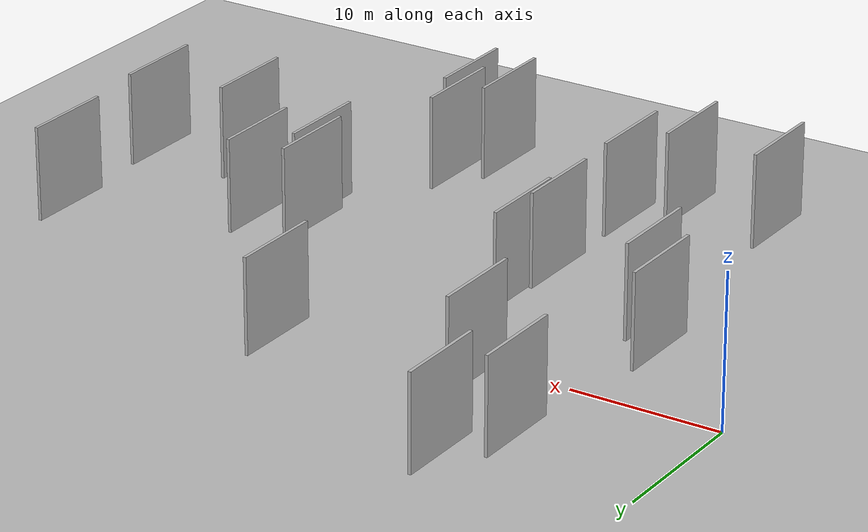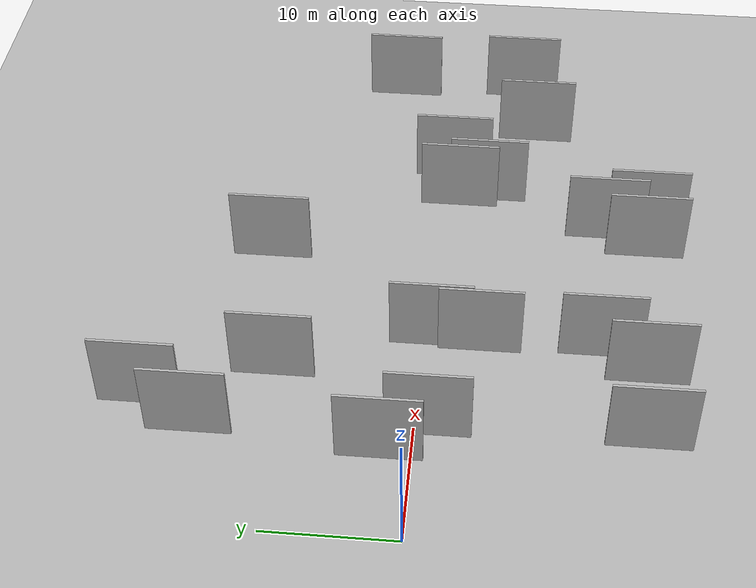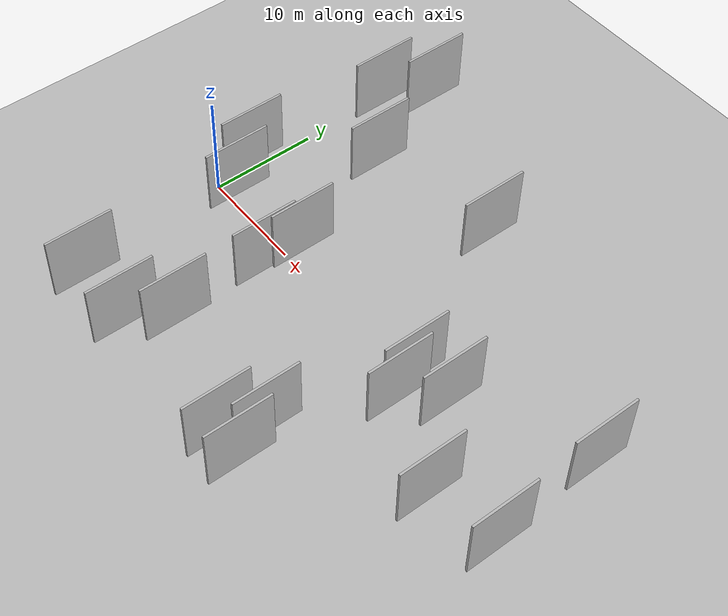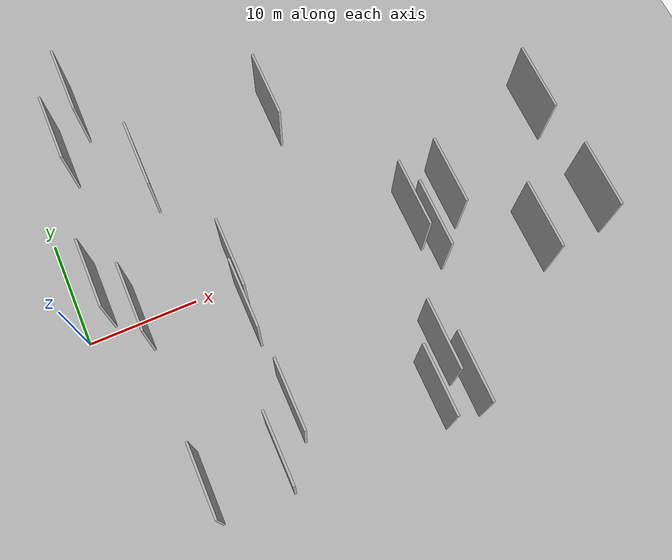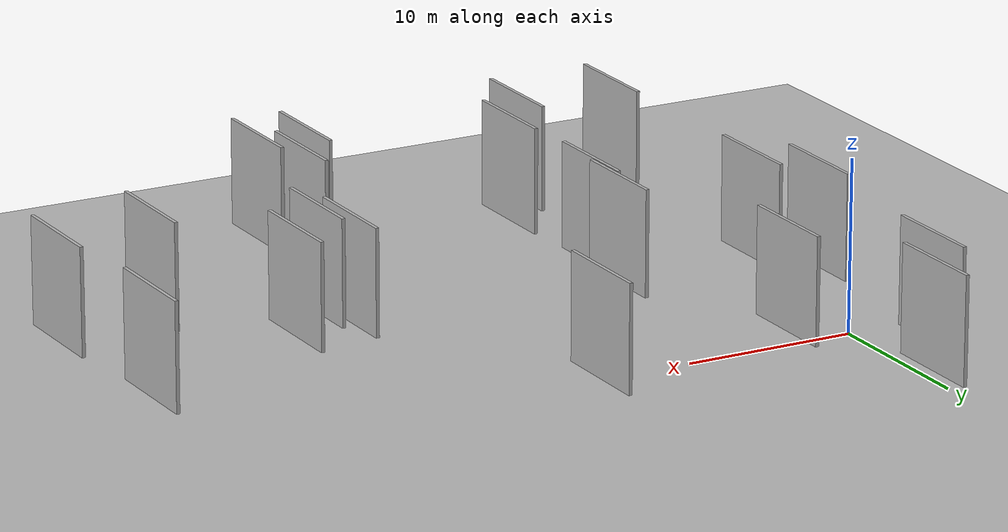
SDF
<?xml version="1.0" encoding="utf-8"?>

<sdf version="1.6">

   <world name="default">

      <gui fullscreen="0">

         <camera name="user_camera">

            <pose>-15 0 4.57585 0 0 0</pose>

            <view_controller>orbit</view_controller>

         </camera>

      </gui>

      <scene>

         <sky>

           <clouds>

             <speed>12</speed>

           </clouds>

         </sky>

         <ambient>0.4 0.4 0.4 1</ambient>

         <background>0.7 0.7 0.7 1</background>

         <shadows>1</shadows>

      </scene>

      <gravity>0 0 -9.8066</gravity>

      <magnetic_field>6e-06 2.3e-05 -4.2e-05</magnetic_field>

      <physics default="0" name="default_physics" type="ode">

         <ode>

            <solver>

               <type>quick</type>

               <iters>10</iters>

               <sor>1.0</sor>

               <use_dynamic_moi_rescaling>0</use_dynamic_moi_rescaling>

            </solver>

            <constraints>

               <cfm>0</cfm>

               <erp>0.2</erp>

               <contact_max_correcting_vel>100</contact_max_correcting_vel>

               <contact_surface_layer>0.001</contact_surface_layer>

            </constraints>

         </ode>

         <max_step_size>0.004</max_step_size>

         <real_time_factor>1</real_time_factor>

         <real_time_update_rate>250</real_time_update_rate>

      </physics>

      <light name="sun" type="directional">

         <cast_shadows>1</cast_shadows>

         <pose>0 0 10 0 0 0</pose>

         <diffuse>0.8 0.8 0.8 1</diffuse>

         <specular>0.2 0.2 0.2 1</specular>

         <attenuation>

            <range>1000</range>

            <constant>0.9</constant>

            <linear>0.01</linear>

            <quadratic>0.001</quadratic>

         </attenuation>

         <direction>-0.5 0.1 -0.9</direction>

      </light>

      <include>

         <name>ground_plane_1</name>

         <uri>model://HANNAS_ground_plane</uri>

         <pose>0 0 0  0 0 0</pose>

      </include>

      <include>

         <name>ground_plane_2</name>

         <uri>model://HANNAS_ground_plane</uri>

         <pose>100 0 0  0 0 0</pose>

      </include>

      <model name="HANNAS_wall_1">

         <static>1</static>

         <pose frame="">43.9721 -6.5906 5.0 0.000000 0.000000 1.570796</pose>

         <link name="link">

            <pose frame="">0 0 3.00 0 0 0</pose>

            <collision name="collision">

               <geometry>

                  <box>

                     <size>6.00 0.2 6.00</size>

                  </box>

               </geometry>

               <max_contacts>10</max_contacts>

               <surface>

                  <contact>

                     <ode/>

                  </contact>

                  <bounce/>

                  <friction>

                     <torsional>

                        <ode/>

                     </torsional>

                     <ode/>

                  </friction>

               </surface>

            </collision>

            <visual name="visual">

               <cast_shadows>0</cast_shadows>

               <geometry>

                  <box>

                     <size>6.00 0.2 6.00</size>

                  </box>

               </geometry>

               <material>

                  <script>

                     <uri>model://HANNAS_wall/materials/scripts</uri>

                     <uri>model://HANNAS_wall/materials/textures</uri>

                     <name>vrc/HANNAS_wall</name>

                  </script>

               </material>

            </visual>

            <self_collide>0</self_collide>

            <enable_wind>0</enable_wind>

            <kinematic>0</kinematic>

         </link>

      </model>

      <model name="HANNAS_wall_2">

         <static>1</static>

         <pose frame="">32.8244 -1.4080 5.0 0.000000 0.000000 1.570796</pose>

         <link name="link">

            <pose frame="">0 0 3.00 0 0 0</pose>

            <collision name="collision">

               <geometry>

                  <box>

                     <size>6.00 0.2 6.00</size>

                  </box>

               </geometry>

               <max_contacts>10</max_contacts>

               <surface>

                  <contact>

                     <ode/>

                  </contact>

                  <bounce/>

                  <friction>

                     <torsional>

                        <ode/>

                     </torsional>

                     <ode/>

                  </friction>

               </surface>

            </collision>

            <visual name="visual">

               <cast_shadows>0</cast_shadows>

               <geometry>

                  <box>

                     <size>6.00 0.2 6.00</size>

                  </box>

               </geometry>

               <material>

                  <script>

                     <uri>model://HANNAS_wall/materials/scripts</uri>

                     <uri>model://HANNAS_wall/materials/textures</uri>

                     <name>vrc/HANNAS_wall</name>

                  </script>

               </material>

            </visual>

            <self_collide>0</self_collide>

            <enable_wind>0</enable_wind>

            <kinematic>0</kinematic>

         </link>

      </model>

      <model name="HANNAS_wall_3">

         <static>1</static>

         <pose frame="">13.8967 -0.9149 5.0 0.000000 0.000000 1.570796</pose>

         <link name="link">

            <pose frame="">0 0 3.00 0 0 0</pose>

            <collision name="collision">

               <geometry>

                  <box>

                     <size>6.00 0.2 6.00</size>

                  </box>

               </geometry>

               <max_contacts>10</max_contacts>

               <surface>

                  <contact>

                     <ode/>

                  </contact>

                  <bounce/>

                  <friction>

                     <torsional>

                        <ode/>

                     </torsional>

                     <ode/>

                  </friction>

               </surface>

            </collision>

            <visual name="visual">

               <cast_shadows>0</cast_shadows>

               <geometry>

                  <box>

                     <size>6.00 0.2 6.00</size>

                  </box>

               </geometry>

               <material>

                  <script>

                     <uri>model://HANNAS_wall/materials/scripts</uri>

                     <uri>model://HANNAS_wall/materials/textures</uri>

                     <name>vrc/HANNAS_wall</name>

                  </script>

               </material>

            </visual>

            <self_collide>0</self_collide>

            <enable_wind>0</enable_wind>

            <kinematic>0</kinematic>

         </link>

      </model>

      <model name="HANNAS_wall_4">

         <static>1</static>

         <pose frame="">29.3101 -2.0494 5.0 0.000000 0.000000 1.570796</pose>

         <link name="link">

            <pose frame="">0 0 3.00 0 0 0</pose>

            <collision name="collision">

               <geometry>

                  <box>

                     <size>6.00 0.2 6.00</size>

                  </box>

               </geometry>

               <max_contacts>10</max_contacts>

               <surface>

                  <contact>

                     <ode/>

                  </contact>

                  <bounce/>

                  <friction>

                     <torsional>

                        <ode/>

                     </torsional>

                     <ode/>

                  </friction>

               </surface>

            </collision>

            <visual name="visual">

               <cast_shadows>0</cast_shadows>

               <geometry>

                  <box>

                     <size>6.00 0.2 6.00</size>

                  </box>

               </geometry>

               <material>

                  <script>

                     <uri>model://HANNAS_wall/materials/scripts</uri>

                     <uri>model://HANNAS_wall/materials/textures</uri>

                     <name>vrc/HANNAS_wall</name>

                  </script>

               </material>

            </visual>

            <self_collide>0</self_collide>

            <enable_wind>0</enable_wind>

            <kinematic>0</kinematic>

         </link>

      </model>

      <model name="HANNAS_wall_5">

         <static>1</static>

         <pose frame="">6.7031 18.9145 5.0 0.000000 0.000000 1.570796</pose>

         <link name="link">

            <pose frame="">0 0 3.00 0 0 0</pose>

            <collision name="collision">

               <geometry>

                  <box>

                     <size>6.00 0.2 6.00</size>

                  </box>

               </geometry>

               <max_contacts>10</max_contacts>

               <surface>

                  <contact>

                     <ode/>

                  </contact>

                  <bounce/>

                  <friction>

                     <torsional>

                        <ode/>

                     </torsional>

                     <ode/>

                  </friction>

               </surface>

            </collision>

            <visual name="visual">

               <cast_shadows>0</cast_shadows>

               <geometry>

                  <box>

                     <size>6.00 0.2 6.00</size>

                  </box>

               </geometry>

               <material>

                  <script>

                     <uri>model://HANNAS_wall/materials/scripts</uri>

                     <uri>model://HANNAS_wall/materials/textures</uri>

                     <name>vrc/HANNAS_wall</name>

                  </script>

               </material>

            </visual>

            <self_collide>0</self_collide>

            <enable_wind>0</enable_wind>

            <kinematic>0</kinematic>

         </link>

      </model>

      <model name="HANNAS_wall_6">

         <static>1</static>

         <pose frame="">11.5426 -16.4120 5.0 0.000000 0.000000 1.570796</pose>

         <link name="link">

            <pose frame="">0 0 3.00 0 0 0</pose>

            <collision name="collision">

               <geometry>

                  <box>

                     <size>6.00 0.2 6.00</size>

                  </box>

               </geometry>

               <max_contacts>10</max_contacts>

               <surface>

                  <contact>

                     <ode/>

                  </contact>

                  <bounce/>

                  <friction>

                     <torsional>

                        <ode/>

                     </torsional>

                     <ode/>

                  </friction>

               </surface>

            </collision>

            <visual name="visual">

               <cast_shadows>0</cast_shadows>

               <geometry>

                  <box>

                     <size>6.00 0.2 6.00</size>

                  </box>

               </geometry>

               <material>

                  <script>

                     <uri>model://HANNAS_wall/materials/scripts</uri>

                     <uri>model://HANNAS_wall/materials/textures</uri>

                     <name>vrc/HANNAS_wall</name>

                  </script>

               </material>

            </visual>

            <self_collide>0</self_collide>

            <enable_wind>0</enable_wind>

            <kinematic>0</kinematic>

         </link>

      </model>

      <model name="HANNAS_wall_7">

         <static>1</static>

         <pose frame="">26.3503 -13.5044 5.0 0.000000 0.000000 1.570796</pose>

         <link name="link">

            <pose frame="">0 0 3.00 0 0 0</pose>

            <collision name="collision">

               <geometry>

                  <box>

                     <size>6.00 0.2 6.00</size>

                  </box>

               </geometry>

               <max_contacts>10</max_contacts>

               <surface>

                  <contact>

                     <ode/>

                  </contact>

                  <bounce/>

                  <friction>

                     <torsional>

                        <ode/>

                     </torsional>

                     <ode/>

                  </friction>

               </surface>

            </collision>

            <visual name="visual">

               <cast_shadows>0</cast_shadows>

               <geometry>

                  <box>

                     <size>6.00 0.2 6.00</size>

                  </box>

               </geometry>

               <material>

                  <script>

                     <uri>model://HANNAS_wall/materials/scripts</uri>

                     <uri>model://HANNAS_wall/materials/textures</uri>

                     <name>vrc/HANNAS_wall</name>

                  </script>

               </material>

            </visual>

            <self_collide>0</self_collide>

            <enable_wind>0</enable_wind>

            <kinematic>0</kinematic>

         </link>

      </model>

      <model name="HANNAS_wall_8">

         <static>1</static>

         <pose frame="">3.2053 1.8374 5.0 0.000000 0.000000 1.570796</pose>

         <link name="link">

            <pose frame="">0 0 3.00 0 0 0</pose>

            <collision name="collision">

               <geometry>

                  <box>

                     <size>6.00 0.2 6.00</size>

                  </box>

               </geometry>

               <max_contacts>10</max_contacts>

               <surface>

                  <contact>

                     <ode/>

                  </contact>

                  <bounce/>

                  <friction>

                     <torsional>

                        <ode/>

                     </torsional>

                     <ode/>

                  </friction>

               </surface>

            </collision>

            <visual name="visual">

               <cast_shadows>0</cast_shadows>

               <geometry>

                  <box>

                     <size>6.00 0.2 6.00</size>

                  </box>

               </geometry>

               <material>

                  <script>

                     <uri>model://HANNAS_wall/materials/scripts</uri>

                     <uri>model://HANNAS_wall/materials/textures</uri>

                     <name>vrc/HANNAS_wall</name>

                  </script>

               </material>

            </visual>

            <self_collide>0</self_collide>

            <enable_wind>0</enable_wind>

            <kinematic>0</kinematic>

         </link>

      </model>

      <model name="HANNAS_wall_9">

         <static>1</static>

         <pose frame="">30.1183 -4.2756 5.0 0.000000 0.000000 1.570796</pose>

         <link name="link">

            <pose frame="">0 0 3.00 0 0 0</pose>

            <collision name="collision">

               <geometry>

                  <box>

                     <size>6.00 0.2 6.00</size>

                  </box>

               </geometry>

               <max_contacts>10</max_contacts>

               <surface>

                  <contact>

                     <ode/>

                  </contact>

                  <bounce/>

                  <friction>

                     <torsional>

                        <ode/>

                     </torsional>

                     <ode/>

                  </friction>

               </surface>

            </collision>

            <visual name="visual">

               <cast_shadows>0</cast_shadows>

               <geometry>

                  <box>

                     <size>6.00 0.2 6.00</size>

                  </box>

               </geometry>

               <material>

                  <script>

                     <uri>model://HANNAS_wall/materials/scripts</uri>

                     <uri>model://HANNAS_wall/materials/textures</uri>

                     <name>vrc/HANNAS_wall</name>

                  </script>

               </material>

            </visual>

            <self_collide>0</self_collide>

            <enable_wind>0</enable_wind>

            <kinematic>0</kinematic>

         </link>

      </model>

      <model name="HANNAS_wall_10">

         <static>1</static>

         <pose frame="">27.4018 -16.6698 5.0 0.000000 0.000000 1.570796</pose>

         <link name="link">

            <pose frame="">0 0 3.00 0 0 0</pose>

            <collision name="collision">

               <geometry>

                  <box>

                     <size>6.00 0.2 6.00</size>

                  </box>

               </geometry>

               <max_contacts>10</max_contacts>

               <surface>

                  <contact>

                     <ode/>

                  </contact>

                  <bounce/>

                  <friction>

                     <torsional>

                        <ode/>

                     </torsional>

                     <ode/>

                  </friction>

               </surface>

            </collision>

            <visual name="visual">

               <cast_shadows>0</cast_shadows>

               <geometry>

                  <box>

                     <size>6.00 0.2 6.00</size>

                  </box>

               </geometry>

               <material>

                  <script>

                     <uri>model://HANNAS_wall/materials/scripts</uri>

                     <uri>model://HANNAS_wall/materials/textures</uri>

                     <name>vrc/HANNAS_wall</name>

                  </script>

               </material>

            </visual>

            <self_collide>0</self_collide>

            <enable_wind>0</enable_wind>

            <kinematic>0</kinematic>

         </link>

      </model>

      <model name="HANNAS_wall_11">

         <static>1</static>

         <pose frame="">24.5395 -16.5570 5.0 0.000000 0.000000 1.570796</pose>

         <link name="link">

            <pose frame="">0 0 3.00 0 0 0</pose>

            <collision name="collision">

               <geometry>

                  <box>

                     <size>6.00 0.2 6.00</size>

                  </box>

               </geometry>

               <max_contacts>10</max_contacts>

               <surface>

                  <contact>

                     <ode/>

                  </contact>

                  <bounce/>

                  <friction>

                     <torsional>

                        <ode/>

                     </torsional>

                     <ode/>

                  </friction>

               </surface>

            </collision>

            <visual name="visual">

               <cast_shadows>0</cast_shadows>

               <geometry>

                  <box>

                     <size>6.00 0.2 6.00</size>

                  </box>

               </geometry>

               <material>

                  <script>

                     <uri>model://HANNAS_wall/materials/scripts</uri>

                     <uri>model://HANNAS_wall/materials/textures</uri>

                     <name>vrc/HANNAS_wall</name>

                  </script>

               </material>

            </visual>

            <self_collide>0</self_collide>

            <enable_wind>0</enable_wind>

            <kinematic>0</kinematic>

         </link>

      </model>

      <model name="HANNAS_wall_12">

         <static>1</static>

         <pose frame="">13.8357 -13.0789 5.0 0.000000 0.000000 1.570796</pose>

         <link name="link">

            <pose frame="">0 0 3.00 0 0 0</pose>

            <collision name="collision">

               <geometry>

                  <box>

                     <size>6.00 0.2 6.00</size>

                  </box>

               </geometry>

               <max_contacts>10</max_contacts>

               <surface>

                  <contact>

                     <ode/>

                  </contact>

                  <bounce/>

                  <friction>

                     <torsional>

                        <ode/>

                     </torsional>

                     <ode/>

                  </friction>

               </surface>

            </collision>

            <visual name="visual">

               <cast_shadows>0</cast_shadows>

               <geometry>

                  <box>

                     <size>6.00 0.2 6.00</size>

                  </box>

               </geometry>

               <material>

                  <script>

                     <uri>model://HANNAS_wall/materials/scripts</uri>

                     <uri>model://HANNAS_wall/materials/textures</uri>

                     <name>vrc/HANNAS_wall</name>

                  </script>

               </material>

            </visual>

            <self_collide>0</self_collide>

            <enable_wind>0</enable_wind>

            <kinematic>0</kinematic>

         </link>

      </model>

      <model name="HANNAS_wall_13">

         <static>1</static>

         <pose frame="">4.4060 15.0596 5.0 0.000000 0.000000 1.570796</pose>

         <link name="link">

            <pose frame="">0 0 3.00 0 0 0</pose>

            <collision name="collision">

               <geometry>

                  <box>

                     <size>6.00 0.2 6.00</size>

                  </box>

               </geometry>

               <max_contacts>10</max_contacts>

               <surface>

                  <contact>

                     <ode/>

                  </contact>

                  <bounce/>

                  <friction>

                     <torsional>

                        <ode/>

                     </torsional>

                     <ode/>

                  </friction>

               </surface>

            </collision>

            <visual name="visual">

               <cast_shadows>0</cast_shadows>

               <geometry>

                  <box>

                     <size>6.00 0.2 6.00</size>

                  </box>

               </geometry>

               <material>

                  <script>

                     <uri>model://HANNAS_wall/materials/scripts</uri>

                     <uri>model://HANNAS_wall/materials/textures</uri>

                     <name>vrc/HANNAS_wall</name>

                  </script>

               </material>

            </visual>

            <self_collide>0</self_collide>

            <enable_wind>0</enable_wind>

            <kinematic>0</kinematic>

         </link>

      </model>

      <model name="HANNAS_wall_14">

         <static>1</static>

         <pose frame="">5.4832 -1.2964 5.0 0.000000 0.000000 1.570796</pose>

         <link name="link">

            <pose frame="">0 0 3.00 0 0 0</pose>

            <collision name="collision">

               <geometry>

                  <box>

                     <size>6.00 0.2 6.00</size>

                  </box>

               </geometry>

               <max_contacts>10</max_contacts>

               <surface>

                  <contact>

                     <ode/>

                  </contact>

                  <bounce/>

                  <friction>

                     <torsional>

                        <ode/>

                     </torsional>

                     <ode/>

                  </friction>

               </surface>

            </collision>

            <visual name="visual">

               <cast_shadows>0</cast_shadows>

               <geometry>

                  <box>

                     <size>6.00 0.2 6.00</size>

                  </box>

               </geometry>

               <material>

                  <script>

                     <uri>model://HANNAS_wall/materials/scripts</uri>

                     <uri>model://HANNAS_wall/materials/textures</uri>

                     <name>vrc/HANNAS_wall</name>

                  </script>

               </material>

            </visual>

            <self_collide>0</self_collide>

            <enable_wind>0</enable_wind>

            <kinematic>0</kinematic>

         </link>

      </model>

      <model name="HANNAS_wall_15">

         <static>1</static>

         <pose frame="">22.1901 11.8491 5.0 0.000000 0.000000 1.570796</pose>

         <link name="link">

            <pose frame="">0 0 3.00 0 0 0</pose>

            <collision name="collision">

               <geometry>

                  <box>

                     <size>6.00 0.2 6.00</size>

                  </box>

               </geometry>

               <max_contacts>10</max_contacts>

               <surface>

                  <contact>

                     <ode/>

                  </contact>

                  <bounce/>

                  <friction>

                     <torsional>

                        <ode/>

                     </torsional>

                     <ode/>

                  </friction>

               </surface>

            </collision>

            <visual name="visual">

               <cast_shadows>0</cast_shadows>

               <geometry>

                  <box>

                     <size>6.00 0.2 6.00</size>

                  </box>

               </geometry>

               <material>

                  <script>

                     <uri>model://HANNAS_wall/materials/scripts</uri>

                     <uri>model://HANNAS_wall/materials/textures</uri>

                     <name>vrc/HANNAS_wall</name>

                  </script>

               </material>

            </visual>

            <self_collide>0</self_collide>

            <enable_wind>0</enable_wind>

            <kinematic>0</kinematic>

         </link>

      </model>

      <model name="HANNAS_wall_16">

         <static>1</static>

         <pose frame="">37.9919 -7.8806 5.0 0.000000 0.000000 1.570796</pose>

         <link name="link">

            <pose frame="">0 0 3.00 0 0 0</pose>

            <collision name="collision">

               <geometry>

                  <box>

                     <size>6.00 0.2 6.00</size>

                  </box>

               </geometry>

               <max_contacts>10</max_contacts>

               <surface>

                  <contact>

                     <ode/>

                  </contact>

                  <bounce/>

                  <friction>

                     <torsional>

                        <ode/>

                     </torsional>

                     <ode/>

                  </friction>

               </surface>

            </collision>

            <visual name="visual">

               <cast_shadows>0</cast_shadows>

               <geometry>

                  <box>

                     <size>6.00 0.2 6.00</size>

                  </box>

               </geometry>

               <material>

                  <script>

                     <uri>model://HANNAS_wall/materials/scripts</uri>

                     <uri>model://HANNAS_wall/materials/textures</uri>

                     <name>vrc/HANNAS_wall</name>

                  </script>

               </material>

            </visual>

            <self_collide>0</self_collide>

            <enable_wind>0</enable_wind>

            <kinematic>0</kinematic>

         </link>

      </model>

      <model name="HANNAS_wall_17">

         <static>1</static>

         <pose frame="">13.6147 -4.4266 5.0 0.000000 0.000000 1.570796</pose>

         <link name="link">

            <pose frame="">0 0 3.00 0 0 0</pose>

            <collision name="collision">

               <geometry>

                  <box>

                     <size>6.00 0.2 6.00</size>

                  </box>

               </geometry>

               <max_contacts>10</max_contacts>

               <surface>

                  <contact>

                     <ode/>

                  </contact>

                  <bounce/>

                  <friction>

                     <torsional>

                        <ode/>

                     </torsional>

                     <ode/>

                  </friction>

               </surface>

            </collision>

            <visual name="visual">

               <cast_shadows>0</cast_shadows>

               <geometry>

                  <box>

                     <size>6.00 0.2 6.00</size>

                  </box>

               </geometry>

               <material>

                  <script>

                     <uri>model://HANNAS_wall/materials/scripts</uri>

                     <uri>model://HANNAS_wall/materials/textures</uri>

                     <name>vrc/HANNAS_wall</name>

                  </script>

               </material>

            </visual>

            <self_collide>0</self_collide>

            <enable_wind>0</enable_wind>

            <kinematic>0</kinematic>

         </link>

      </model>

      <model name="HANNAS_wall_18">

         <static>1</static>

         <pose frame="">10.0651 10.0481 5.0 0.000000 0.000000 1.570796</pose>

         <link name="link">

            <pose frame="">0 0 3.00 0 0 0</pose>

            <collision name="collision">

               <geometry>

                  <box>

                     <size>6.00 0.2 6.00</size>

                  </box>

               </geometry>

               <max_contacts>10</max_contacts>

               <surface>

                  <contact>

                     <ode/>

                  </contact>

                  <bounce/>

                  <friction>

                     <torsional>

                        <ode/>

                     </torsional>

                     <ode/>

                  </friction>

               </surface>

            </collision>

            <visual name="visual">

               <cast_shadows>0</cast_shadows>

               <geometry>

                  <box>

                     <size>6.00 0.2 6.00</size>

                  </box>

               </geometry>

               <material>

                  <script>

                     <uri>model://HANNAS_wall/materials/scripts</uri>

                     <uri>model://HANNAS_wall/materials/textures</uri>

                     <name>vrc/HANNAS_wall</name>

                  </script>

               </material>

            </visual>

            <self_collide>0</self_collide>

            <enable_wind>0</enable_wind>

            <kinematic>0</kinematic>

         </link>

      </model>

      <model name="HANNAS_wall_19">

         <static>1</static>

         <pose frame="">5.6042 -16.3465 5.0 0.000000 0.000000 1.570796</pose>

         <link name="link">

            <pose frame="">0 0 3.00 0 0 0</pose>

            <collision name="collision">

               <geometry>

                  <box>

                     <size>6.00 0.2 6.00</size>

                  </box>

               </geometry>

               <max_contacts>10</max_contacts>

               <surface>

                  <contact>

                     <ode/>

                  </contact>

                  <bounce/>

                  <friction>

                     <torsional>

                        <ode/>

                     </torsional>

                     <ode/>

                  </friction>

               </surface>

            </collision>

            <visual name="visual">

               <cast_shadows>0</cast_shadows>

               <geometry>

                  <box>

                     <size>6.00 0.2 6.00</size>

                  </box>

               </geometry>

               <material>

                  <script>

                     <uri>model://HANNAS_wall/materials/scripts</uri>

                     <uri>model://HANNAS_wall/materials/textures</uri>

                     <name>vrc/HANNAS_wall</name>

                  </script>

               </material>

            </visual>

            <self_collide>0</self_collide>

            <enable_wind>0</enable_wind>

            <kinematic>0</kinematic>

         </link>

      </model>

      <model name="HANNAS_wall_20">

         <static>1</static>

         <pose frame="">43.4162 3.3468 5.0 0.000000 0.000000 1.570796</pose>

         <link name="link">

            <pose frame="">0 0 3.00 0 0 0</pose>

            <collision name="collision">

               <geometry>

                  <box>

                     <size>6.00 0.2 6.00</size>

                  </box>

               </geometry>

               <max_contacts>10</max_contacts>

               <surface>

                  <contact>

                     <ode/>

                  </contact>

                  <bounce/>

                  <friction>

                     <torsional>

                        <ode/>

                     </torsional>

                     <ode/>

                  </friction>

               </surface>

            </collision>

            <visual name="visual">

               <cast_shadows>0</cast_shadows>

               <geometry>

                  <box>

                     <size>6.00 0.2 6.00</size>

                  </box>

               </geometry>

               <material>

                  <script>

                     <uri>model://HANNAS_wall/materials/scripts</uri>

                     <uri>model://HANNAS_wall/materials/textures</uri>

                     <name>vrc/HANNAS_wall</name>

                  </script>

               </material>

            </visual>

            <self_collide>0</self_collide>

            <enable_wind>0</enable_wind>

            <kinematic>0</kinematic>

         </link>

      </model>

   </world>

</sdf>

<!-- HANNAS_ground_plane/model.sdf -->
<sdf version="1.4">
<model name="HANNAS_ground_plane">
  <static>true</static>
    <link name="link">
      <collision name="collision">
        <geometry>
          <plane>
            <normal>0 0 1</normal>
            <size>1000 1000</size>
          </plane>
        </geometry>
        <surface>
          <friction>
            <ode>
              <mu>100</mu>
              <mu2>50</mu2>
            </ode>
          </friction>
        </surface>
      </collision>
      <visual name="visual">
        <cast_shadows>false</cast_shadows>
        <geometry>
          <plane>
            <normal>0 0 1</normal>
            <size>1000 1000</size>
          </plane>
        </geometry>
        <material>
          <script>
            <uri>model://HANNAS_ground_plane/materials/scripts/HANNAS_ground_plane.material</uri>
	    <uri>model://HANNAS_ground_plane/materials/textures</uri>
            <name>HANNASGroundPlane/Image</name>
          </script>
        </material>
      </visual>
    </link>
  </model>
</sdf>
